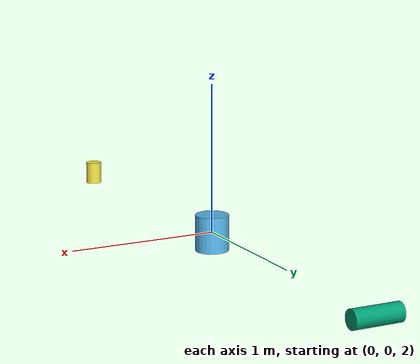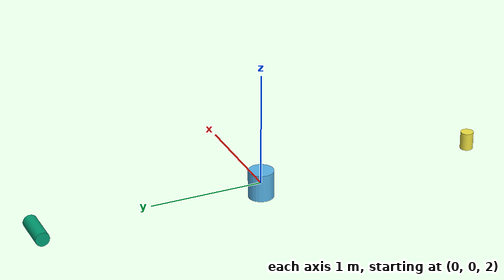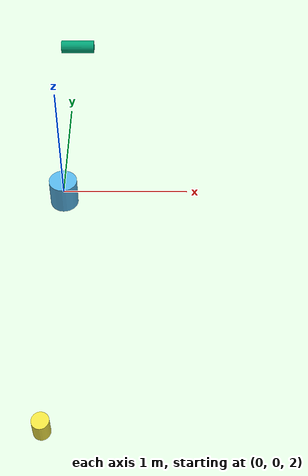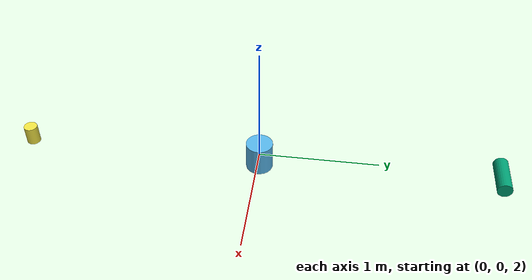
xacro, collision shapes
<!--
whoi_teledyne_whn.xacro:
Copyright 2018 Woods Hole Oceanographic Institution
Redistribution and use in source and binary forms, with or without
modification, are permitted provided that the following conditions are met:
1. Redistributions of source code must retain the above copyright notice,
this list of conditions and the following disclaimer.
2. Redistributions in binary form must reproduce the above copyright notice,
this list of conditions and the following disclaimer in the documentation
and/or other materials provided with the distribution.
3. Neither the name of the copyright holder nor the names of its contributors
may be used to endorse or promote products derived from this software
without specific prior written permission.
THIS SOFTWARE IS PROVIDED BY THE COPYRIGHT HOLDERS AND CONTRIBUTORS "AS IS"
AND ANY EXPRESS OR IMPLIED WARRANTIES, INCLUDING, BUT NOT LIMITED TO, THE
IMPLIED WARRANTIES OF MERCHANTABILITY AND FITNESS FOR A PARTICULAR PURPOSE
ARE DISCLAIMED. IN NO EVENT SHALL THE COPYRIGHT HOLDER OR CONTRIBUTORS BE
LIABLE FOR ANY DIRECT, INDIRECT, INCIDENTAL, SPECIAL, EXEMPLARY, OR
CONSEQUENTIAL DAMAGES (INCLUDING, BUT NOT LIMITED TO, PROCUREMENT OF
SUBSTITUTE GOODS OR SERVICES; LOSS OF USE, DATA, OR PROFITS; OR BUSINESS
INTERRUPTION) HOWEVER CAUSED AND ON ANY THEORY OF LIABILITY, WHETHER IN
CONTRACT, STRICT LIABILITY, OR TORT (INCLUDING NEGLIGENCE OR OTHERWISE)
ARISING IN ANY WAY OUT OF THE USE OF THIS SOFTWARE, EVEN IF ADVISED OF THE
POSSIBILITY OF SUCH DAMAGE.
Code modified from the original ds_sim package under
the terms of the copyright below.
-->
<?xml version="1.0"?>
<!-- Simple Xacro template for generating a stanadlone Teledyne WHN
     DVL model that can be inserted into a world for demo purposes. -->
<robot xmlns:xacro="http://www.ros.org/wiki/xacro" name="side_by_side">

  <xacro:include filename="$(find nps_uw_sensors_gazebo)/urdf/whoi_teledyne_whn.xacro"/>
  <xacro:include filename="$(find nps_uw_sensors_gazebo)/urdf/whoi_teledyne_explorer_1000.xacro"/>
  <xacro:include filename="$(find nps_uw_sensors_gazebo)/urdf/whoi_nortek_dvl1000_300.xacro"/>

  <!-- Just making a zero-dimension link at the origin to attach everything to -->
  <link name="base_link"/>

  <!-- Call the macro to "attach" the Teledyne WHN DVL -->
  <xacro:teledyne_whn_macro
    name="whn" namespace="whn" xyz="0 0 0"
    dvl_topic="dvl" ranges_topic="ranges"
    robot_link="base_link" joint_xyz="0 0 2"/>

  <!-- Call the macro to "attach" the Teledyne Explorer DVL -->
  <xacro:teledyne_explorer_macro
    name="explorer" namespace="explorer" xyz="0 0 0"
    dvl_topic="dvl" ranges_topic="ranges"
    robot_link="base_link" joint_xyz="0 2 2"/>

  <!-- Call the macro to "attach" the Nortek DVL1000 -->
  <xacro:nortek_dvl1000_macro
    name="dvl1000" namespace="dvl1000" xyz="0 0 0"
    dvl_topic="dvl" ranges_topic="ranges"
    robot_link="base_link" joint_xyz="0 -2 2"/>

  <!-- Turn gravity (off) for now so that the (unpowered) robot doesn't sink like
       a rock.  Can remove this once the neutral buoyancy issue (#4) is resolved -->
  <gazebo reference="base_link">
    <turnGravityOff>true</turnGravityOff>
  </gazebo>
</robot>

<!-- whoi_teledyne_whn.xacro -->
<robot xmlns:xacro="http://www.ros.org/wiki/xacro">

  <!-- Generates a link element with Teledyne WHN 600 physical & visual characteristics -->
  <xacro:macro name="teledyne_whn_link" params="name xyz">
    <link name="${name}_link">
      <inertial>
        <mass value="15.8"/>
        <origin xyz="0 0 0" rpy="${pi} 0 0"/>
        <inertia ixx="0.1287917645" ixy="0" ixz="0" iyy="0.1287917645" iyz="0" izz="0.100162204"/>
      </inertial>
      <visual>
        <geometry>
          <mesh filename="package://nps_uw_sensors_gazebo/models/whoi_teledyne_whn/meshes/WorkhorseNavigator.dae"/>
        </geometry>
        <origin xyz="${xyz}" rpy="0 0 0"/>
      </visual>
      <collision>
        <geometry>
          <cylinder length="0.2445" radius="0.1126"/>
        </geometry>
        <origin xyz="${xyz}" rpy="0 0 0"/>
      </collision>
    </link>
  </xacro:macro>

  <!-- Generates a sensor element with Teledyne WHN 600 parameters -->
  <xacro:macro name="teledyne_whn_sensor"
               params="name robot_link sensor_link xyz namespace dvl_topic ranges_topic">
    <gazebo reference="${sensor_link}">
      <sensor name="${name}_sensor" type="dsros_dvl">
        <always_on>1</always_on>
        <update_rate>7.0</update_rate>
        <pose frame="">${xyz} 0 0 0</pose>

        <!-- This plugin MUST be included, because SDF sucks -->
        <plugin name="${name}_sensor_controller" filename="libdsros_ros_dvl.so">
          <robotNamespace>${namespace}</robotNamespace>
          <topicName>${dvl_topic}</topicName>
          <rangesTopicName>${ranges_topic}</rangesTopicName>
          <frameName>${name}_link</frameName>
          <pointcloudFrame>${robot_link}</pointcloudFrame>

          <!--  WHN 600 parameters (from vendor data sheet) -->
          <updateRateHZ>7.0</updateRateHZ>
          <gaussianNoiseBeamVel>0.005</gaussianNoiseBeamVel>
          <gaussianNoiseBeamWtrVel>0.0075</gaussianNoiseBeamWtrVel>
          <gaussianNoiseBeamRange>0.1</gaussianNoiseBeamRange>
          <minRange>0.7</minRange>
          <maxRange>90.0</maxRange>
          <maxRangeDiff>10</maxRangeDiff>
          <beamAngleDeg>30.0</beamAngleDeg>
          <beamWidthDeg>4.0</beamWidthDeg>
          <beamAzimuthDeg1>-135</beamAzimuthDeg1>
          <beamAzimuthDeg2>135</beamAzimuthDeg2>
          <beamAzimuthDeg3>45</beamAzimuthDeg3>
          <beamAzimuthDeg4>-45</beamAzimuthDeg4>
          <enableWaterTrack>1</enableWaterTrack>
          <waterTrackBins>10</waterTrackBins>
          <currentProfileCoordMode>0</currentProfileCoordMode>
          <pos_z_down>true</pos_z_down>
          <collide_bitmask>0x0001</collide_bitmask>
        </plugin>
      </sensor>
    </gazebo>
  </xacro:macro>

  <xacro:macro name="teledyne_whn_joint"
               params="name robot_link joint_xyz">
    <joint name="${name}_joint" type="fixed">
      <origin xyz="${joint_xyz}" rpy="${pi} 0 0"/>
      <parent link="${robot_link}"/>
      <child link="${name}_link"/>
    </joint>
  </xacro:macro>

  <xacro:macro name="teledyne_whn_macro"
               params="name xyz namespace dvl_topic ranges_topic robot_link joint_xyz">
    <xacro:teledyne_whn_link name="${name}" xyz="${xyz}" />
    <xacro:teledyne_whn_joint name="${name}" robot_link="${robot_link}" joint_xyz="${joint_xyz}"/>
    <xacro:teledyne_whn_sensor name="${name}"
                               robot_link="${robot_link}" sensor_link="${name}_link"
                               xyz="${xyz}" namespace="${namespace}"
                               dvl_topic="${dvl_topic}" ranges_topic="${ranges_topic}"/>
  </xacro:macro>

</robot>

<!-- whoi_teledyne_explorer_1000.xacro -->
<robot xmlns:xacro="http://www.ros.org/wiki/xacro">

  <!-- Generates a link element with Teledyne Explorer 1000 (phased array) physical & visual characteristics -->
  <xacro:macro name="teledyne_explorer_link" params="name xyz">
    <link name="${name}_link">
      <inertial>
        <mass value="4.3"/>
        <origin xyz="0 0 0" rpy="${pi} 0 0"/>
        <!-- Different mounting orientation than other DVLs -->
        <inertia ixx="0.0082646" ixy="0" ixz="0" iyy="0.042214533333333" iyz="0" izz="0.042214533333333"/>
      </inertial>
      <visual>
        <geometry>
          <mesh filename="package://nps_uw_sensors_gazebo/models/whoi_teledyne_explorer1000/meshes/MarineExplorer.dae"/>
        </geometry>
        <origin xyz="${xyz}" rpy="${-0.5*pi} 0 ${-0.5*pi}"/>
      </visual>
      <collision>
        <geometry>
          <!-- Replace cylinder with collision mesh once it's available -->
          <cylinder length="0.326" radius="0.062"/>
        </geometry>
        <origin xyz="${xyz}" rpy="0 ${0.5*pi} 0"/>
      </collision>
    </link>
  </xacro:macro>

  <!-- Generates a sensor element with Teledyne Explorer 1000 (phased array) parameters -->
  <xacro:macro name="teledyne_explorer_sensor"
               params="name robot_link sensor_link xyz namespace dvl_topic ranges_topic">
    <gazebo reference="${sensor_link}">
      <sensor name="${name}_sensor" type="dsros_dvl">
        <always_on>1</always_on>
        <update_rate>10.0</update_rate> <!-- Published is "up to" 25Hz -->
        <pose frame="">${xyz} 0 0 0</pose>

        <!-- This plugin MUST be included, because SDF sucks -->
        <plugin name="${name}_sensor_controller" filename="libdsros_ros_dvl.so">
          <robotNamespace>${namespace}</robotNamespace>
          <topicName>${dvl_topic}</topicName>
          <rangesTopicName>${ranges_topic}</rangesTopicName>
          <frameName>${name}_link</frameName>
          <pointcloudFrame>${robot_link}</pointcloudFrame>

          <!--  Explorer 1000 parameters (from vendor data sheet) -->
          <updateRateHZ>12.0</updateRateHZ>
          <gaussianNoiseBeamVel>0.018</gaussianNoiseBeamVel>
          <gaussianNoiseBeamWtrVel>0.048</gaussianNoiseBeamWtrVel>
          <gaussianNoiseBeamRange>0.1</gaussianNoiseBeamRange>
          <minRange>0.5</minRange>
          <maxRange>81.0</maxRange>
          <maxRangeDiff>12</maxRangeDiff>
          <beamAngleDeg>30.0</beamAngleDeg>
          <beamWidthDeg>2.2</beamWidthDeg>
          <beamAzimuthDeg1>-135</beamAzimuthDeg1>
          <beamAzimuthDeg2>135</beamAzimuthDeg2>
          <beamAzimuthDeg3>45</beamAzimuthDeg3>
          <beamAzimuthDeg4>-45</beamAzimuthDeg4>
          <enableWaterTrack>1</enableWaterTrack>
          <waterTrackBins>10</waterTrackBins>
          <currentProfileCoordMode>0</currentProfileCoordMode>
          <pos_z_down>true</pos_z_down>
          <collide_bitmask>0x0001</collide_bitmask>
        </plugin>
      </sensor>
    </gazebo>
  </xacro:macro>

  <xacro:macro name="teledyne_explorer_joint"
               params="name robot_link joint_xyz">
    <joint name="${name}_joint" type="fixed">
      <origin xyz="${joint_xyz}" rpy="${pi} 0 0"/>
      <parent link="${robot_link}"/>
      <child link="${name}_link"/>
    </joint>
  </xacro:macro>

  <xacro:macro name="teledyne_explorer_macro"
               params="name xyz namespace dvl_topic ranges_topic robot_link joint_xyz">
    <xacro:teledyne_explorer_link name="${name}" xyz="${xyz}" />
    <xacro:teledyne_explorer_joint name="${name}" robot_link="${robot_link}" joint_xyz="${joint_xyz}"/>
    <xacro:teledyne_explorer_sensor name="${name}"
                                    robot_link="${robot_link}" sensor_link="${name}_link"
                                    xyz="${xyz}" namespace="${namespace}"
                                    dvl_topic="${dvl_topic}" ranges_topic="${ranges_topic}"/>
  </xacro:macro>

</robot>

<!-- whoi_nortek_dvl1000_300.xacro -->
<robot xmlns:xacro="http://www.ros.org/wiki/xacro">

  <!-- Generates a link element with Nortek DVL1000-300m physical & visual characteristics -->
  <xacro:macro name="nortek_dvl1000_link" params="name xyz">
    <link name="${name}_link">
      <inertial>
        <mass value="1.3"/>
        <origin xyz="0 0 0" rpy="${pi} 0 0"/>
        <inertia ixx="0.003760358333333" ixy="0" ixz="0" iyy="0.003760358333333" iyz="0" izz="0.00211185"/>
      </inertial>
      <visual>
        <geometry>
          <mesh filename="package://nps_uw_sensors_gazebo/models/whoi_nortek_dvl1000_300/meshes/DVL1000-300m.dae"/>
        </geometry>
        <origin xyz="${xyz}" rpy="0 ${pi} 0"/>
      </visual>
      <collision>
        <geometry>
          <!-- Replace cylinder with collision mesh once it's available -->
          <cylinder length="0.158" radius="0.057"/>
        </geometry>
        <origin xyz="${xyz}" rpy="0 0 0"/>
      </collision>
    </link>
  </xacro:macro>

  <!-- Generates a sensor element with Nortek DVL1000-300m parameters -->
  <xacro:macro name="nortek_dvl1000_sensor"
               params="name robot_link sensor_link xyz namespace dvl_topic ranges_topic">
    <gazebo reference="${sensor_link}">
      <sensor name="${name}_sensor" type="dsros_dvl">
        <always_on>1</always_on>
        <update_rate>8.0</update_rate>
        <pose frame="">${xyz} 0 0 0</pose>

        <!-- This plugin MUST be included, because SDF sucks -->
        <plugin name="${name}_sensor_controller" filename="libdsros_ros_dvl.so">
          <robotNamespace>${namespace}</robotNamespace>
          <topicName>${dvl_topic}</topicName>
          <rangesTopicName>${ranges_topic}</rangesTopicName>
          <frameName>${name}_link</frameName>
          <pointcloudFrame>${robot_link}</pointcloudFrame>

          <!--  DVL1000-300m parameters (from vendor data sheet) -->
          <updateRateHZ>8.0</updateRateHZ>
          <gaussianNoiseBeamVel>0.005</gaussianNoiseBeamVel>
          <gaussianNoiseBeamWtrVel>0.015</gaussianNoiseBeamWtrVel>
          <gaussianNoiseBeamRange>0.1</gaussianNoiseBeamRange>
          <minRange>0.2</minRange>
          <maxRange>75.0</maxRange>
          <maxRangeDiff>10</maxRangeDiff>
          <beamAngleDeg>25.0</beamAngleDeg>
          <beamWidthDeg>3.0</beamWidthDeg>
          <beamAzimuthDeg1>-135</beamAzimuthDeg1>
          <beamAzimuthDeg2>135</beamAzimuthDeg2>
          <beamAzimuthDeg3>45</beamAzimuthDeg3>
          <beamAzimuthDeg4>-45</beamAzimuthDeg4>
          <enableWaterTrack>1</enableWaterTrack>
          <waterTrackBins>10</waterTrackBins>
          <currentProfileCoordMode>0</currentProfileCoordMode>
          <pos_z_down>true</pos_z_down>
          <collide_bitmask>0x0001</collide_bitmask>
        </plugin>
      </sensor>
    </gazebo>
  </xacro:macro>

  <xacro:macro name="nortek_dvl1000_joint"
               params="name robot_link joint_xyz">
    <joint name="${name}_joint" type="fixed">
      <origin xyz="${joint_xyz}" rpy="${pi} 0 0"/>
      <parent link="${robot_link}"/>
      <child link="${name}_link"/>
    </joint>
  </xacro:macro>

  <xacro:macro name="nortek_dvl1000_macro"
               params="name xyz namespace dvl_topic ranges_topic robot_link joint_xyz">
    <xacro:nortek_dvl1000_link name="${name}" xyz="${xyz}" />
    <xacro:nortek_dvl1000_joint name="${name}" robot_link="${robot_link}" joint_xyz="${joint_xyz}"/>
    <xacro:nortek_dvl1000_sensor name="${name}"
                                robot_link="${robot_link}" sensor_link="${name}_link"
                                 xyz="${xyz}" namespace="${namespace}"
                                 dvl_topic="${dvl_topic}" ranges_topic="${ranges_topic}"/>
  </xacro:macro>

</robot>
